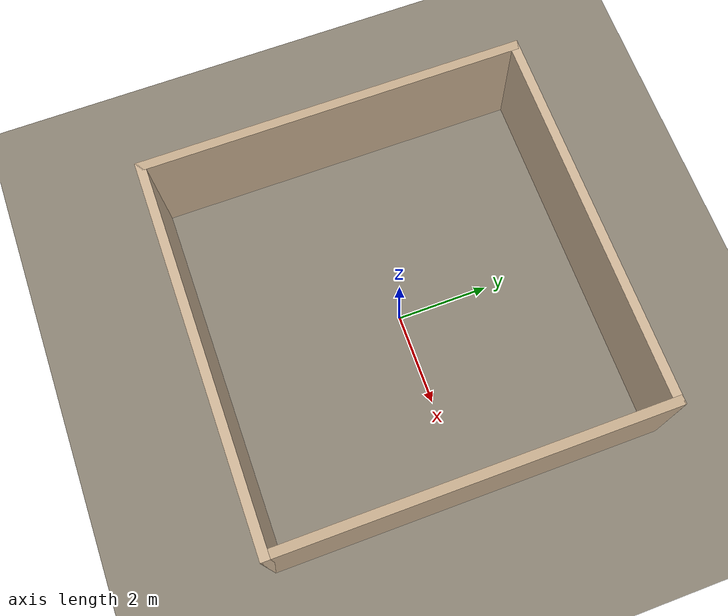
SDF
<?xml version="1.0" ?>

<sdf version="1.9">
  <world name="default">

    <!-- Required Ignition Fortress system plugins -->
    <plugin filename="libignition-gazebo-physics-system.so"
            name="ignition::gazebo::systems::Physics"/>
    <plugin filename="libignition-gazebo-user-commands-system.so"
            name="ignition::gazebo::systems::UserCommands"/>
    <plugin filename="libignition-gazebo-scene-broadcaster-system.so"
            name="ignition::gazebo::systems::SceneBroadcaster"/>
    <plugin filename="libignition-gazebo-sensors-system.so"
            name="ignition::gazebo::systems::Sensors">
      <render_engine>ogre2</render_engine>
    </plugin>
    <plugin filename="libignition-gazebo-imu-system.so"
            name="ignition::gazebo::systems::Imu"/>

    <!-- Physics -->
    <physics name="1ms" type="ignored">
      <max_step_size>0.001</max_step_size>
      <real_time_factor>1.0</real_time_factor>
      <real_time_update_rate>1000</real_time_update_rate>
    </physics>

    <!-- Scene -->
    <scene>
      <ambient>0.4 0.4 0.4 1</ambient>
      <background>0.2 0.2 0.2 1</background>
      <shadows>true</shadows>
      <grid>false</grid>
    </scene>

    <!-- Lighting -->
    <light name="sun" type="directional">
      <cast_shadows>true</cast_shadows>
      <pose>0 0 10 0 0 0</pose>
      <diffuse>0.9 0.9 0.9 1</diffuse>
      <specular>0.3 0.3 0.3 1</specular>
      <direction>-0.5 0.1 -0.9</direction>
      <attenuation>
        <range>1000</range>
        <constant>0.9</constant>
        <linear>0.01</linear>
        <quadratic>0.001</quadratic>
      </attenuation>
    </light>

    <light name="ambient_fill" type="point">
      <pose>0 0 4 0 0 0</pose>
      <diffuse>0.4 0.4 0.45 1</diffuse>
      <specular>0.0 0.0 0.0 1</specular>
      <attenuation>
        <range>20</range>
        <constant>0.5</constant>
        <linear>0.05</linear>
        <quadratic>0.002</quadratic>
      </attenuation>
      <cast_shadows>false</cast_shadows>
    </light>

    <!-- FLOOR -->
    <model name="floor">
      <static>true</static>
      <pose>0 0 0 0 0 0</pose>
      <link name="link">
        <collision name="collision">
          <geometry>
            <plane><normal>0 0 1</normal><size>100 100</size></plane>
          </geometry>
          <surface>
            <friction><ode><mu>100</mu><mu2>50</mu2></ode></friction>
          </surface>
        </collision>
        <visual name="visual">
          <cast_shadows>false</cast_shadows>
          <geometry>
            <plane><normal>0 0 1</normal><size>100 100</size></plane>
          </geometry>
          <material>
            <ambient>0.4 0.38 0.34 1</ambient>
            <diffuse>0.55 0.52 0.46 1</diffuse>
            <specular>0.02 0.02 0.02 1</specular>
          </material>
        </visual>
      </link>
    </model>

    <!-- North wall -->
    <model name="wall_north">
      <static>true</static>
      <pose>0 4.1 0 0 0 0</pose>
      <link name="link">
        <collision name="collision">
          <geometry><box><size>8.4 0.2 2.5</size></box></geometry>
          <pose>0 0 1.25 0 0 0</pose>
        </collision>
        <visual name="visual">
          <pose>0 0 1.25 0 0 0</pose>
          <geometry><box><size>8.4 0.2 2.5</size></box></geometry>
          <material>
            <ambient>0.72 0.62 0.5 1</ambient>
            <diffuse>0.82 0.72 0.6 1</diffuse>
            <specular>0.05 0.05 0.05 1</specular>
          </material>
        </visual>
      </link>
    </model>

    <!-- South wall -->
    <model name="wall_south">
      <static>true</static>
      <pose>0 -4.1 0 0 0 0</pose>
      <link name="link">
        <collision name="collision">
          <geometry><box><size>8.4 0.2 2.5</size></box></geometry>
          <pose>0 0 1.25 0 0 0</pose>
        </collision>
        <visual name="visual">
          <pose>0 0 1.25 0 0 0</pose>
          <geometry><box><size>8.4 0.2 2.5</size></box></geometry>
          <material>
            <ambient>0.72 0.62 0.5 1</ambient>
            <diffuse>0.82 0.72 0.6 1</diffuse>
            <specular>0.05 0.05 0.05 1</specular>
          </material>
        </visual>
      </link>
    </model>

    <!-- East wall -->
    <model name="wall_east">
      <static>true</static>
      <pose>4.1 0 0 0 0 0</pose>
      <link name="link">
        <collision name="collision">
          <geometry><box><size>0.2 8.4 2.5</size></box></geometry>
          <pose>0 0 1.25 0 0 0</pose>
        </collision>
        <visual name="visual">
          <pose>0 0 1.25 0 0 0</pose>
          <geometry><box><size>0.2 8.4 2.5</size></box></geometry>
          <material>
            <ambient>0.68 0.58 0.46 1</ambient>
            <diffuse>0.78 0.68 0.56 1</diffuse>
            <specular>0.05 0.05 0.05 1</specular>
          </material>
        </visual>
      </link>
    </model>

    <!-- West wall -->
    <model name="wall_west">
      <static>true</static>
      <pose>-4.1 0 0 0 0 0</pose>
      <link name="link">
        <collision name="collision">
          <geometry><box><size>0.2 8.4 2.5</size></box></geometry>
          <pose>0 0 1.25 0 0 0</pose>
        </collision>
        <visual name="visual">
          <pose>0 0 1.25 0 0 0</pose>
          <geometry><box><size>0.2 8.4 2.5</size></box></geometry>
          <material>
            <ambient>0.68 0.58 0.46 1</ambient>
            <diffuse>0.78 0.68 0.56 1</diffuse>
            <specular>0.05 0.05 0.05 1</specular>
          </material>
        </visual>
      </link>
    </model>

  </world>
</sdf>
